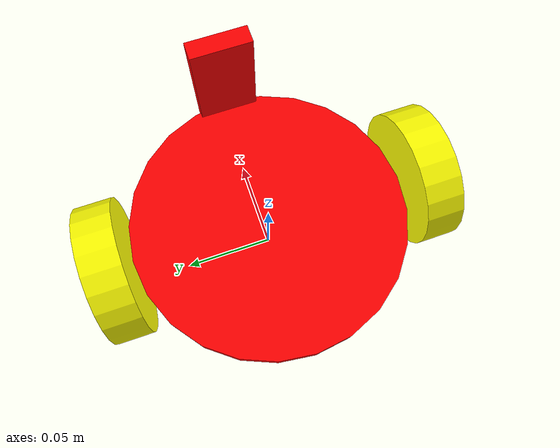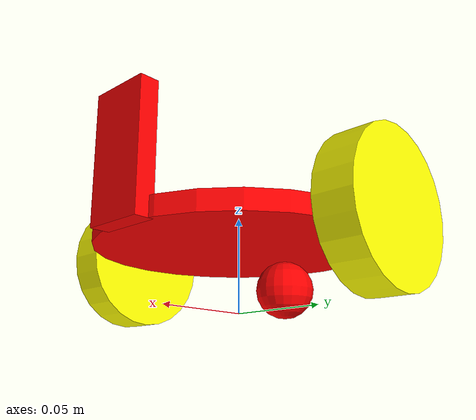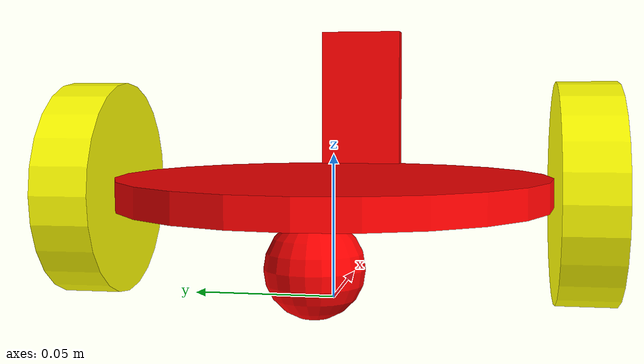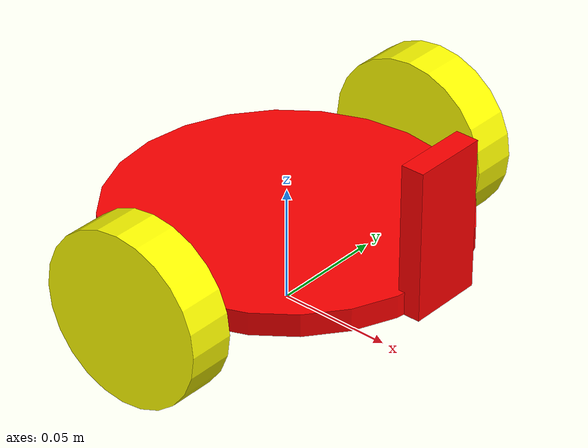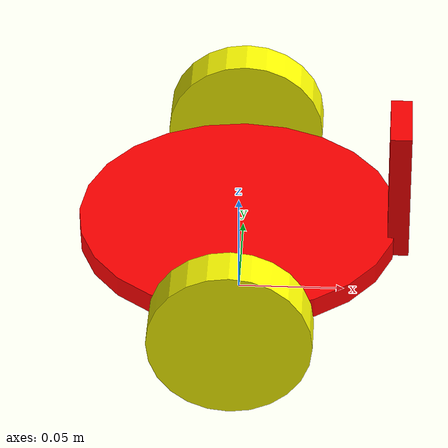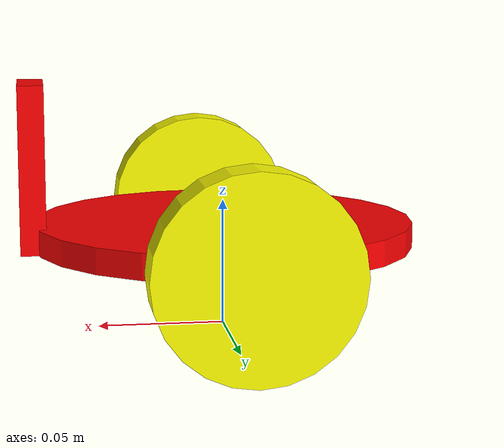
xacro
<?xml version="1.0" encoding="UTF-8"?>
<robot xmlns:xacro= "http://www.ros.org/wiki/xacro" name="GoPiGo3">
<xacro:property name="width_base" value="0.01"/>
<xacro:property name="radius_base" value="0.075"/>
<xacro:property name="radius_wheel" value="0.0375"/>
<xacro:property name="width_wheel" value="0.02"/>
<xacro:property name="pi" value="3.1415"/>
<xacro:property name="camera_height" value="0.065"/>
<xacro:property name="counter_weight_radius" value="0.016">

</xacro:property>
<material name="red">
    <color rgba="1.0 0.0 0.0 1.0"/>
</material>
<material name="yellow">
    <color rgba="1.0 1.0 0.0 1.0"/>
</material>
<xacro:macro name="default_inertia" params="mass">
    <inertial>
        <mass value="${mass/10}"/>
        <inertia ixx="0.001" ixy="0.0" ixz="0.0" iyy="0.001" iyz="0.0" izz="0.001"/>
    </inertial>
</xacro:macro>
<xacro:macro name="wheel" params="preffix">
    <link name="${preffix}_wheel">
        <visual>
            <geometry>
                <cylinder radius="${radius_wheel}" length="${width_wheel}"/>
            </geometry>
             <material name="yellow"/>
            <origin rpy="0.0 ${pi/2}  0.0" xyz="0.0 0.0 0.0"/>
        </visual>
        <collision>
            <geometry>
                <cylinder radius="${radius_wheel}" length="${width_wheel}"/>
            </geometry>
            <origin rpy="${pi/2} 0.0 0.0" xyz="0.0 0.0 0.0"/>
        </collision>
        <xacro:default_inertia mass="1.0"/>
    </link>
    <!-- Transmission Elements-->
<gazebo reference="${preffix}_wheel">
    <material>
        Gazebo/Grey
    </material>
</gazebo>
    <transmission name="${preffix}_wheel_trans">
        <type>
            transmission_interface/SimpleTransmission
        </type>
        <actuator name="${preffix}_wheel_motor">
            <mechanicalReduction>
                1.0
            </mechanicalReduction>
        </actuator>
        <joint name="${preffix}_wheel_to_base_link" type="continuous">
            <hardwareInterface>
                hardware_interface/VelocityJointInterface
            </hardwareInterface>
        </joint>
</transmission>
</xacro:macro>
<xacro:macro name="wheel_joint" params="preffix orientation">
    <joint name="${preffix}_wheel_to_base_link" type="continuous">
        <parent link="base_link"/>
        <child  link="${preffix}_wheel"/>
        <origin xyz="0.0 ${orientation*(radius_base+(width_wheel/2))} ${radius_wheel}" rpy="0.0 0.0 ${pi/2}"/>
        <axis xyz="1.0 0.0 0.0"/>
    </joint>
</xacro:macro>

<link name="base_link">
    <visual>
        <geometry>
            <cylinder radius="${radius_base}" length="${width_base}"/>
        </geometry>
        <origin rpy="0.0 0.0 0.0" xyz="0.0 0.0 ${radius_wheel}"/>
        <material name="red"/>
    </visual>
    <collision>
        <geometry>
            <cylinder radius="${radius_base}" length="${width_base}"/>
        </geometry>
            <origin rpy="0.0 0.0 0.0" xyz="0.0 0.0 ${radius_wheel}"/>
    </collision>
    <xacro:default_inertia mass="1.0"/>
</link>
<xacro:wheel_joint preffix="right" orientation="1.0"/>
<xacro:wheel preffix="right"/>
<xacro:wheel_joint preffix="left" orientation="-1.0"/>
<xacro:wheel preffix="left"/>
<joint name="counter_weight_to_base_link" type="fixed">
    <parent link="base_link"/>
    <child  link="counter_weight"/>
    <origin xyz="${-1*radius_base/2}  0.0 ${radius_wheel - width_base/2 - counter_weight_radius}"/>
    <axis xyz="1.0 0.0 0.0"/>
</joint>
<link name="counter_weight">
    <visual>
        <geometry>
            <sphere radius="${counter_weight_radius}"/>
        </geometry>
        <origin rpy="0.0 0 0.0" xyz="0.0 0.0 0.0"/>
        <material name="red"/>
    </visual>
    <collision>
        <geometry>
            <sphere radius="${counter_weight_radius}"/>
        </geometry>
        <origin rpy="0.0 0 0.0" xyz="0.0 0.0 0.0"/>
    </collision>
    <xacro:default_inertia mass="4.0"/>
    <gazebo reference="$counter_weight">
        <mu1 value="0.0"/>
        <mu2 value="0.0"/>
        <material>
            Gazebo/Red
        </material>
    </gazebo>
</link>
<joint name="camera_link_to_base_link" type="revolute">
    <parent link="base_link"/>
    <child  link="camera_link"/>
    <origin xyz="${radius_base} 0.0 ${camera_height}" rpy="${-1*pi/2} 0.0 ${-1*pi/2}"/>
    <axis xyz="0.0 1.0 0.0"/>
    <limit lower="${-1*0/2}" upper="${0/2}" effort="1000" velocity="1.0"/>
</joint>
<link name="camera_link">
    <visual>
        <geometry>
            <box size="${camera_height/2} ${camera_height} ${width_base}"/>
        </geometry>
        <origin rpy="0.0 0.0 0.0" xyz="0.0 0.0 0.0"/>
         <material name="red"/>
    </visual>
    <collision>
        <geometry>
            <box size="${camera_height/2} ${camera_height} ${width_base}"/>
        </geometry>
        <origin rpy="0.0 0.0 0.0" xyz="0.0 0.0 0.0"/>
    </collision>
    <xacro:default_inertia mass="1.0"/>
</link>
<transmission name= "servo_trans">
    <type>
         transmission_interface/SimpleTransmisssion
    </type>
    <actuator name="servo_motor">
        <mechanicalReduction>
            1.0
        </mechanicalReduction>
    </actuator>
    <joint name="camera_link_to_base_link" >
        <hardwareInterface>
            hardware_interface/PositionJointInterface
        </hardwareInterface>
    </joint>
</transmission>
<!-- Gazebo -->
<gazebo reference="camera_link">
    <sensor name="camera_1" type="camera" update_rate="30.0">
    <origin xyz="0.0 0.0 0.0" rpy="0.0 0.0 0.0"/>
    <camera>
    <image width="320" height="240" hfov="0.915" format="RGB8" near="0.01" far="50.0"/>
    </camera>
    <!-- Sensor camera -->
    <plugin name="camera_controller" filename="libgazebo_ros_camera.so">
        <alwaysOn>
            true
        </alwaysOn>
        <updateRate>
            30.0
        </updateRate>
        <cameraName>
            gpg
        </cameraName>
        <imageTopicName>
            image
        </imageTopicName>
        <cameraInfoTopicName>
            camera_info
        </cameraInfoTopicName>
        <frameName>
            camera_link
        </frameName>
        <hackBaseline>
            0.0
        </hackBaseline>
        <distortionK1>0.0809380</distortionK1>
        <distortionK2>-0.257429</distortionK2>
        <distortionK3>0.0</distortionK3>
        <distortionT1>-0.002955</distortionT1>
        <distortionT2>0.003629</distortionT2>
    </plugin>
    </sensor>
</gazebo>
<!-- ros_control plugin-->
<gazebo>
    <plugin name="gazebo_ros_control" filename="libgazebo_ros_control.so">
        <robotNamespace>
            /gpg
        </robotNamespace>
        <legacyModeNS>
            false
        </legacyModeNS>
    </plugin>
</gazebo>

</robot>
